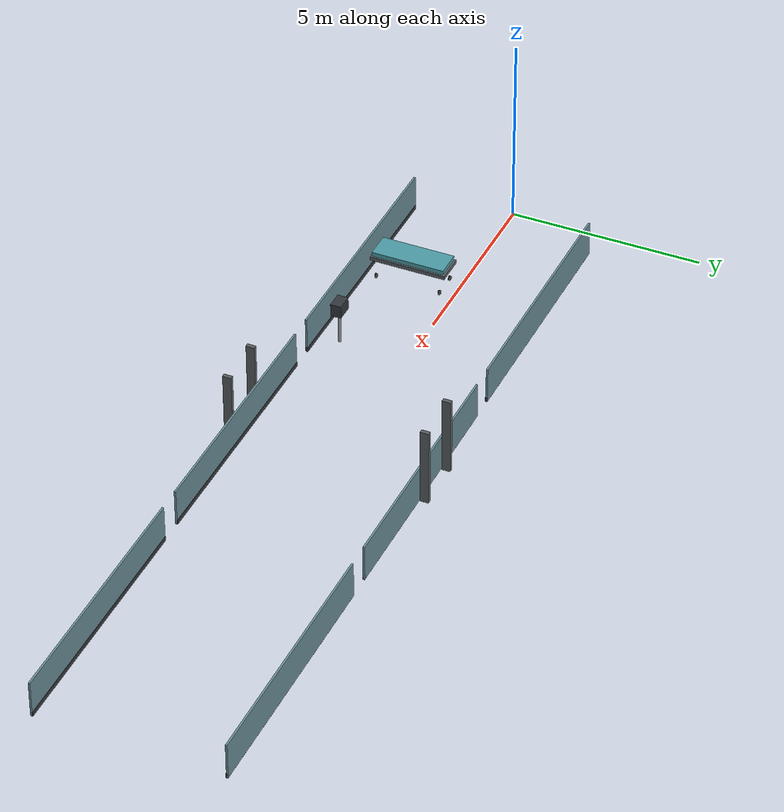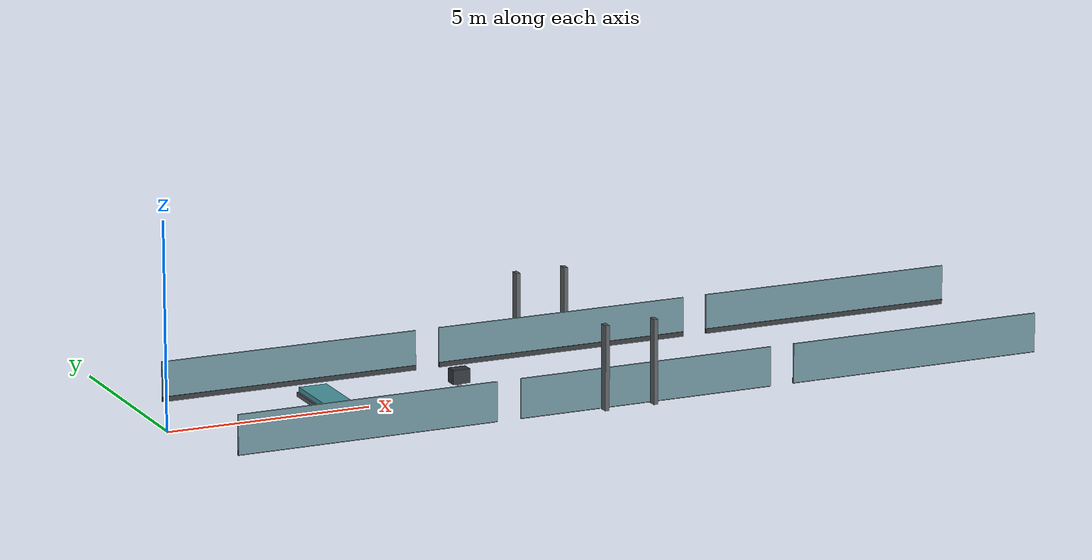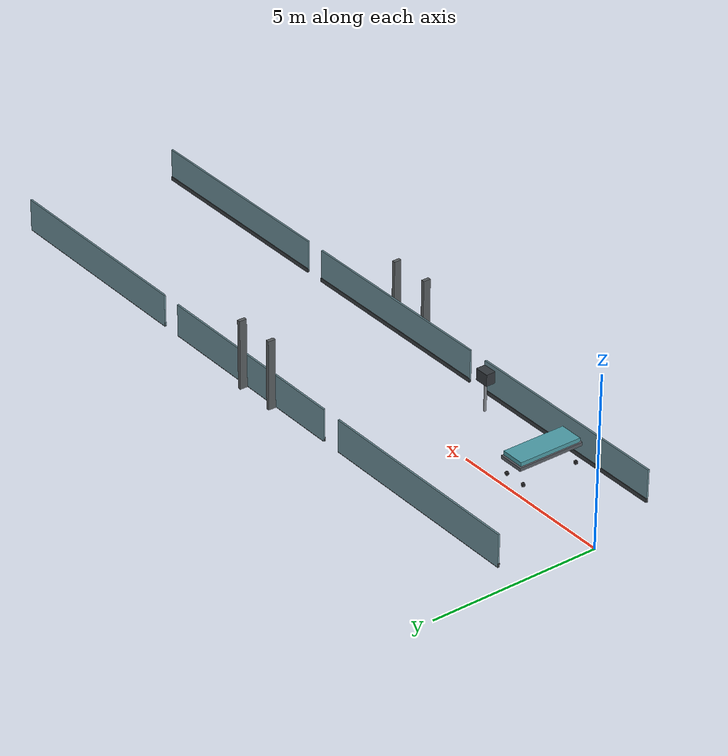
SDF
<sdf version="1.6">
 <world name="hospital">
  <include><uri>model://sun</uri></include>
  <model name="enh_wainscot_4_0">
   <static>true</static>
   <pose>4.0 -2.36 0.49 0 0 0</pose>
   <link name="link">
    <collision name="c"><geometry><box><size>6.4 0.05 0.95</size></box></geometry></collision>
    <visual name="v">
     <geometry><box><size>6.4 0.05 0.95</size></box></geometry>
     <material>
      <ambient>0.420 0.560 0.600 1</ambient>
      <diffuse>0.420 0.560 0.600 1</diffuse>
      <specular>0.1 0.1 0.1 1</specular>
     </material>
    </visual>
   </link>
  </model>
  <model name="enh_baseboard_4_0">
   <static>true</static>
   <pose>4.0 -2.35 0.06 0 0 0</pose>
   <link name="link">
    <collision name="c"><geometry><box><size>6.4 0.06 0.12</size></box></geometry></collision>
    <visual name="v">
     <geometry><box><size>6.4 0.06 0.12</size></box></geometry>
     <material>
      <ambient>0.220 0.240 0.250 1</ambient>
      <diffuse>0.220 0.240 0.250 1</diffuse>
      <specular>0.1 0.1 0.1 1</specular>
     </material>
    </visual>
   </link>
  </model>
  <model name="enh_wainscot_4_1">
   <static>true</static>
   <pose>4.0 2.36 0.49 0 0 0</pose>
   <link name="link">
    <collision name="c"><geometry><box><size>6.4 0.05 0.95</size></box></geometry></collision>
    <visual name="v">
     <geometry><box><size>6.4 0.05 0.95</size></box></geometry>
     <material>
      <ambient>0.420 0.560 0.600 1</ambient>
      <diffuse>0.420 0.560 0.600 1</diffuse>
      <specular>0.1 0.1 0.1 1</specular>
     </material>
    </visual>
   </link>
  </model>
  <model name="enh_baseboard_4_1">
   <static>true</static>
   <pose>4.0 2.35 0.06 0 0 0</pose>
   <link name="link">
    <collision name="c"><geometry><box><size>6.4 0.06 0.12</size></box></geometry></collision>
    <visual name="v">
     <geometry><box><size>6.4 0.06 0.12</size></box></geometry>
     <material>
      <ambient>0.220 0.240 0.250 1</ambient>
      <diffuse>0.220 0.240 0.250 1</diffuse>
      <specular>0.1 0.1 0.1 1</specular>
     </material>
    </visual>
   </link>
  </model>
  <model name="enh_wainscot_5_0">
   <static>true</static>
   <pose>11.0 -2.36 0.49 0 0 0</pose>
   <link name="link">
    <collision name="c"><geometry><box><size>6.4 0.05 0.95</size></box></geometry></collision>
    <visual name="v">
     <geometry><box><size>6.4 0.05 0.95</size></box></geometry>
     <material>
      <ambient>0.420 0.560 0.600 1</ambient>
      <diffuse>0.420 0.560 0.600 1</diffuse>
      <specular>0.1 0.1 0.1 1</specular>
     </material>
    </visual>
   </link>
  </model>
  <model name="enh_baseboard_5_0">
   <static>true</static>
   <pose>11.0 -2.35 0.06 0 0 0</pose>
   <link name="link">
    <collision name="c"><geometry><box><size>6.4 0.06 0.12</size></box></geometry></collision>
    <visual name="v">
     <geometry><box><size>6.4 0.06 0.12</size></box></geometry>
     <material>
      <ambient>0.220 0.240 0.250 1</ambient>
      <diffuse>0.220 0.240 0.250 1</diffuse>
      <specular>0.1 0.1 0.1 1</specular>
     </material>
    </visual>
   </link>
  </model>
  <model name="enh_wainscot_5_1">
   <static>true</static>
   <pose>11.0 2.36 0.49 0 0 0</pose>
   <link name="link">
    <collision name="c"><geometry><box><size>6.4 0.05 0.95</size></box></geometry></collision>
    <visual name="v">
     <geometry><box><size>6.4 0.05 0.95</size></box></geometry>
     <material>
      <ambient>0.420 0.560 0.600 1</ambient>
      <diffuse>0.420 0.560 0.600 1</diffuse>
      <specular>0.1 0.1 0.1 1</specular>
     </material>
    </visual>
   </link>
  </model>
  <model name="enh_baseboard_5_1">
   <static>true</static>
   <pose>11.0 2.35 0.06 0 0 0</pose>
   <link name="link">
    <collision name="c"><geometry><box><size>6.4 0.06 0.12</size></box></geometry></collision>
    <visual name="v">
     <geometry><box><size>6.4 0.06 0.12</size></box></geometry>
     <material>
      <ambient>0.220 0.240 0.250 1</ambient>
      <diffuse>0.220 0.240 0.250 1</diffuse>
      <specular>0.1 0.1 0.1 1</specular>
     </material>
    </visual>
   </link>
  </model>
  <model name="enh_wainscot_6_0">
   <static>true</static>
   <pose>18.0 -2.36 0.49 0 0 0</pose>
   <link name="link">
    <collision name="c"><geometry><box><size>6.4 0.05 0.95</size></box></geometry></collision>
    <visual name="v">
     <geometry><box><size>6.4 0.05 0.95</size></box></geometry>
     <material>
      <ambient>0.420 0.560 0.600 1</ambient>
      <diffuse>0.420 0.560 0.600 1</diffuse>
      <specular>0.1 0.1 0.1 1</specular>
     </material>
    </visual>
   </link>
  </model>
  <model name="enh_baseboard_6_0">
   <static>true</static>
   <pose>18.0 -2.35 0.06 0 0 0</pose>
   <link name="link">
    <collision name="c"><geometry><box><size>6.4 0.06 0.12</size></box></geometry></collision>
    <visual name="v">
     <geometry><box><size>6.4 0.06 0.12</size></box></geometry>
     <material>
      <ambient>0.220 0.240 0.250 1</ambient>
      <diffuse>0.220 0.240 0.250 1</diffuse>
      <specular>0.1 0.1 0.1 1</specular>
     </material>
    </visual>
   </link>
  </model>
  <model name="enh_wainscot_6_1">
   <static>true</static>
   <pose>18.0 2.36 0.49 0 0 0</pose>
   <link name="link">
    <collision name="c"><geometry><box><size>6.4 0.05 0.95</size></box></geometry></collision>
    <visual name="v">
     <geometry><box><size>6.4 0.05 0.95</size></box></geometry>
     <material>
      <ambient>0.420 0.560 0.600 1</ambient>
      <diffuse>0.420 0.560 0.600 1</diffuse>
      <specular>0.1 0.1 0.1 1</specular>
     </material>
    </visual>
   </link>
  </model>
  <model name="enh_baseboard_6_1">
   <static>true</static>
   <pose>18.0 2.35 0.06 0 0 0</pose>
   <link name="link">
    <collision name="c"><geometry><box><size>6.4 0.06 0.12</size></box></geometry></collision>
    <visual name="v">
     <geometry><box><size>6.4 0.06 0.12</size></box></geometry>
     <material>
      <ambient>0.220 0.240 0.250 1</ambient>
      <diffuse>0.220 0.240 0.250 1</diffuse>
      <specular>0.1 0.1 0.1 1</specular>
     </material>
    </visual>
   </link>
  </model>
  <model name="enh_doorframe_2_-1_-62">
   <static>true</static>
   <pose>9.88 -2.5 1.02 0 0 0</pose>
   <link name="link">
    <collision name="c"><geometry><box><size>0.1 0.22 2.05</size></box></geometry></collision>
    <visual name="v">
     <geometry><box><size>0.1 0.22 2.05</size></box></geometry>
     <material>
      <ambient>0.350 0.370 0.380 1</ambient>
      <diffuse>0.350 0.370 0.380 1</diffuse>
      <specular>0.1 0.1 0.1 1</specular>
     </material>
    </visual>
   </link>
  </model>
  <model name="enh_doorframe_2_-1_62">
   <static>true</static>
   <pose>11.12 -2.5 1.02 0 0 0</pose>
   <link name="link">
    <collision name="c"><geometry><box><size>0.1 0.22 2.05</size></box></geometry></collision>
    <visual name="v">
     <geometry><box><size>0.1 0.22 2.05</size></box></geometry>
     <material>
      <ambient>0.350 0.370 0.380 1</ambient>
      <diffuse>0.350 0.370 0.380 1</diffuse>
      <specular>0.1 0.1 0.1 1</specular>
     </material>
    </visual>
   </link>
  </model>
  <model name="enh_doorframe_2_1_-62">
   <static>true</static>
   <pose>9.88 2.5 1.02 0 0 0</pose>
   <link name="link">
    <collision name="c"><geometry><box><size>0.1 0.22 2.05</size></box></geometry></collision>
    <visual name="v">
     <geometry><box><size>0.1 0.22 2.05</size></box></geometry>
     <material>
      <ambient>0.350 0.370 0.380 1</ambient>
      <diffuse>0.350 0.370 0.380 1</diffuse>
      <specular>0.1 0.1 0.1 1</specular>
     </material>
    </visual>
   </link>
  </model>
  <model name="enh_doorframe_2_1_62">
   <static>true</static>
   <pose>11.12 2.5 1.02 0 0 0</pose>
   <link name="link">
    <collision name="c"><geometry><box><size>0.1 0.22 2.05</size></box></geometry></collision>
    <visual name="v">
     <geometry><box><size>0.1 0.22 2.05</size></box></geometry>
     <material>
      <ambient>0.350 0.370 0.380 1</ambient>
      <diffuse>0.350 0.370 0.380 1</diffuse>
      <specular>0.1 0.1 0.1 1</specular>
     </material>
    </visual>
   </link>
  </model>
  <model name="enh_gurney_frame_0">
   <static>true</static>
   <pose>3.5 -1.2 0.58 0 0 0</pose>
   <link name="link">
    <collision name="c"><geometry><box><size>0.75 2.0 0.1</size></box></geometry></collision>
    <visual name="v">
     <geometry><box><size>0.75 2.0 0.1</size></box></geometry>
     <material>
      <ambient>0.350 0.370 0.400 1</ambient>
      <diffuse>0.350 0.370 0.400 1</diffuse>
      <specular>0.1 0.1 0.1 1</specular>
     </material>
    </visual>
   </link>
  </model>
  <model name="enh_gurney_mattress_0">
   <static>true</static>
   <pose>3.5 -1.2 0.7 0 0 0</pose>
   <link name="link">
    <collision name="c"><geometry><box><size>0.68 1.9 0.12</size></box></geometry></collision>
    <visual name="v">
     <geometry><box><size>0.68 1.9 0.12</size></box></geometry>
     <material>
      <ambient>0.300 0.620 0.660 1</ambient>
      <diffuse>0.300 0.620 0.660 1</diffuse>
      <specular>0.1 0.1 0.1 1</specular>
     </material>
    </visual>
   </link>
  </model>
  <model name="enh_gurney_0_wheel_0">
   <static>true</static>
   <pose>3.18 -2.05 0.06 1.5708 0 0</pose>
   <link name="link">
    <collision name="c">
     <geometry><cylinder><radius>0.06</radius><length>0.05</length></cylinder></geometry>
    </collision>
    <visual name="v">
     <geometry><cylinder><radius>0.06</radius><length>0.05</length></cylinder></geometry>
     <material>
      <ambient>0.120 0.120 0.130 1</ambient>
      <diffuse>0.120 0.120 0.130 1</diffuse>
      <specular>0.1 0.1 0.1 1</specular>
     </material>
    </visual>
   </link>
  </model>
  <model name="enh_gurney_0_wheel_1">
   <static>true</static>
   <pose>3.82 -2.05 0.06 1.5708 0 0</pose>
   <link name="link">
    <collision name="c">
     <geometry><cylinder><radius>0.06</radius><length>0.05</length></cylinder></geometry>
    </collision>
    <visual name="v">
     <geometry><cylinder><radius>0.06</radius><length>0.05</length></cylinder></geometry>
     <material>
      <ambient>0.120 0.120 0.130 1</ambient>
      <diffuse>0.120 0.120 0.130 1</diffuse>
      <specular>0.1 0.1 0.1 1</specular>
     </material>
    </visual>
   </link>
  </model>
  <model name="enh_gurney_0_wheel_2">
   <static>true</static>
   <pose>3.18 -0.35 0.06 1.5708 0 0</pose>
   <link name="link">
    <collision name="c">
     <geometry><cylinder><radius>0.06</radius><length>0.05</length></cylinder></geometry>
    </collision>
    <visual name="v">
     <geometry><cylinder><radius>0.06</radius><length>0.05</length></cylinder></geometry>
     <material>
      <ambient>0.120 0.120 0.130 1</ambient>
      <diffuse>0.120 0.120 0.130 1</diffuse>
      <specular>0.1 0.1 0.1 1</specular>
     </material>
    </visual>
   </link>
  </model>
  <model name="enh_gurney_0_wheel_3">
   <static>true</static>
   <pose>3.82 -0.35 0.06 1.5708 0 0</pose>
   <link name="link">
    <collision name="c">
     <geometry><cylinder><radius>0.06</radius><length>0.05</length></cylinder></geometry>
    </collision>
    <visual name="v">
     <geometry><cylinder><radius>0.06</radius><length>0.05</length></cylinder></geometry>
     <material>
      <ambient>0.120 0.120 0.130 1</ambient>
      <diffuse>0.120 0.120 0.130 1</diffuse>
      <specular>0.1 0.1 0.1 1</specular>
     </material>
    </visual>
   </link>
  </model>
  <model name="enh_monitor">
   <static>true</static>
   <pose>6.5 -1.8 1.05 0 0 0</pose>
   <link name="link">
    <collision name="c"><geometry><box><size>0.42 0.28 0.34</size></box></geometry></collision>
    <visual name="v">
     <geometry><box><size>0.42 0.28 0.34</size></box></geometry>
     <material>
      <ambient>0.200 0.220 0.240 1</ambient>
      <diffuse>0.200 0.220 0.240 1</diffuse>
      <specular>0.1 0.1 0.1 1</specular>
     </material>
    </visual>
   </link>
  </model>
  <model name="enh_monitor_stand">
   <static>true</static>
   <pose>6.5 -1.8 0.5 0 0 0</pose>
   <link name="link">
    <collision name="c">
     <geometry><cylinder><radius>0.04</radius><length>1.0</length></cylinder></geometry>
    </collision>
    <visual name="v">
     <geometry><cylinder><radius>0.04</radius><length>1.0</length></cylinder></geometry>
     <material>
      <ambient>0.550 0.570 0.600 1</ambient>
      <diffuse>0.550 0.570 0.600 1</diffuse>
      <specular>0.1 0.1 0.1 1</specular>
     </material>
    </visual>
   </link>
  </model>
 </world>
</sdf>
